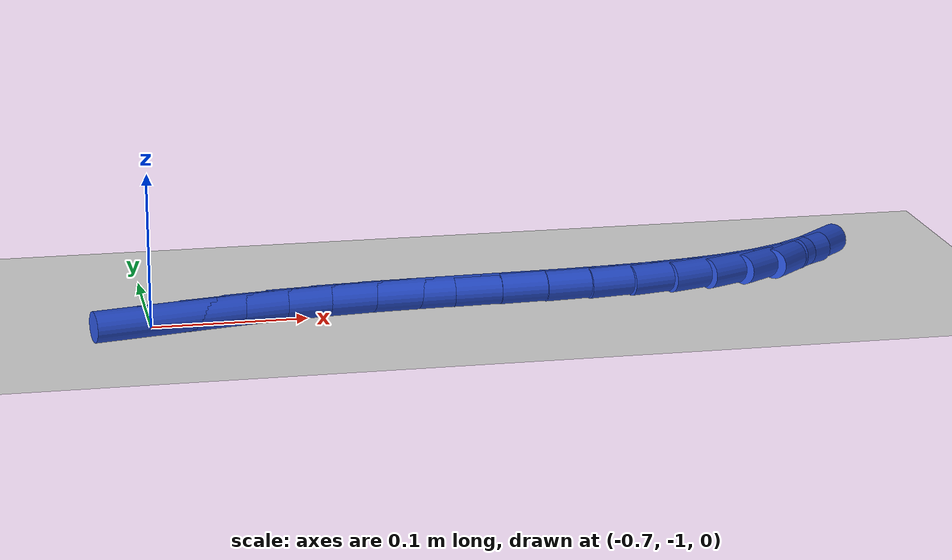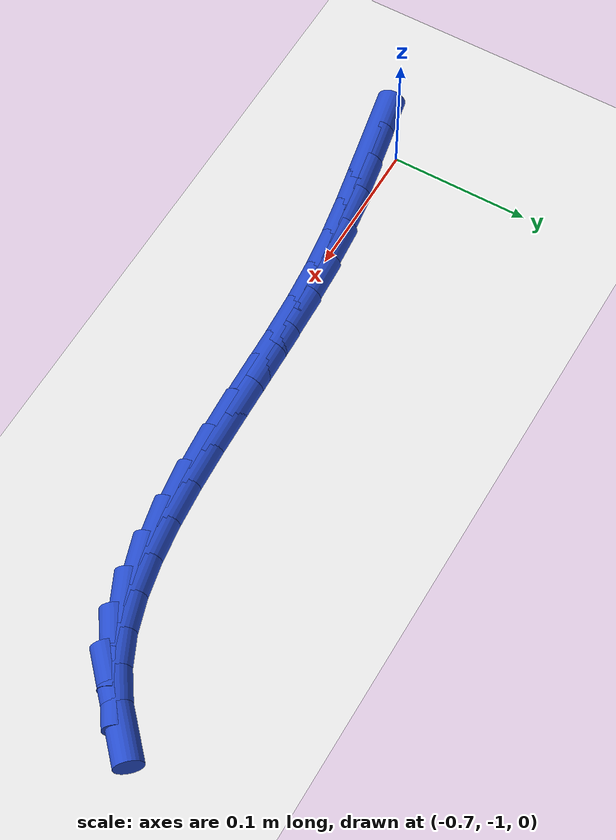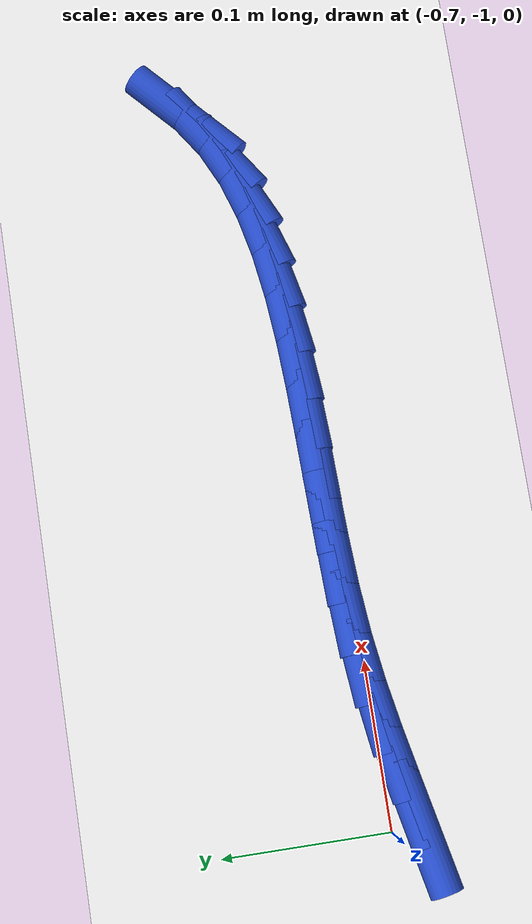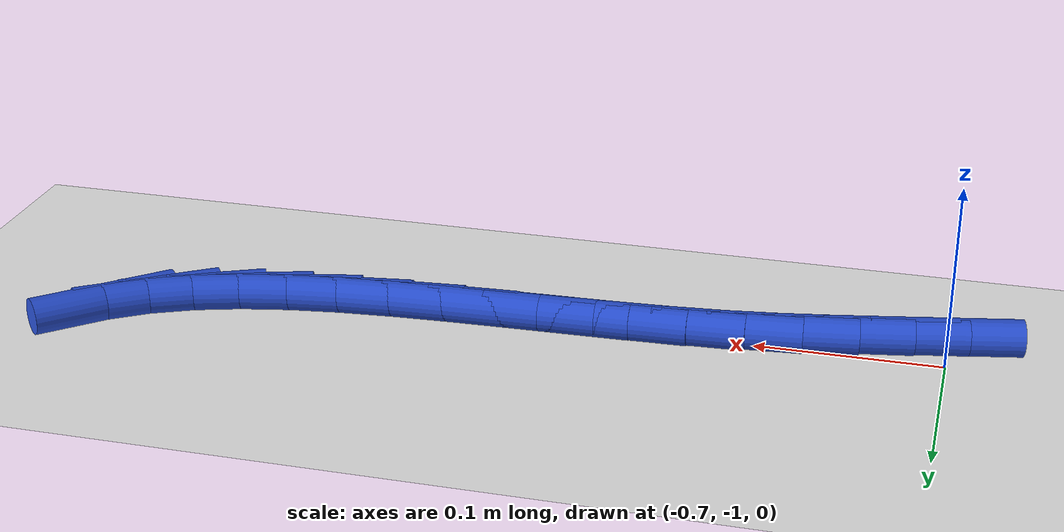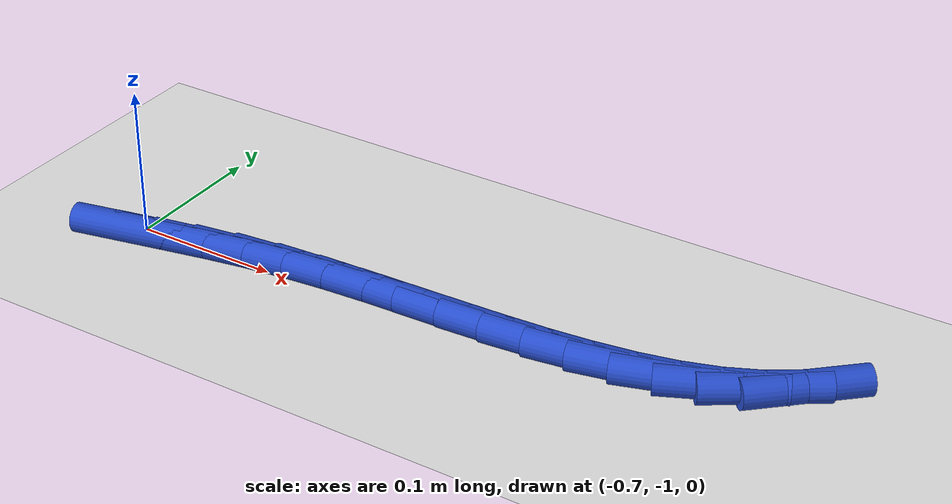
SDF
<sdf version="1.6">
 <world name="default">
  <model name="ground_plane">
   <static>1</static>
   <link name="link">
    <collision name="collision">
     <geometry><plane><normal>0 0 1</normal><size>100 100</size></plane></geometry>
     <surface><friction><ode><mu>100</mu><mu2>50</mu2></ode></friction></surface>
    </collision>
    <visual name="visual">
     <cast_shadows>0</cast_shadows>
     <geometry><plane><normal>0 0 1</normal><size>100 100</size></plane></geometry>
     <material>
      <script><uri>file://media/materials/scripts/gazebo.material</uri><name>Gazebo/WhiteGlow</name></script>
     </material>
    </visual>
   </link>
  </model>
  <model name="line">
   <link name="link_220">
    <pose>-0.6985794826883338 -1.0168291882600338 0.01 0 1.57 0.20521963874366755</pose>
    <collision name="collision">
     <geometry><cylinder><radius>0.01</radius><length>0.08</length></cylinder></geometry>
    </collision>
    <visual name="visual">
     <material>
      <script><name>Gazebo/Blue</name><uri>file://media/materials/scripts/gazebo.material</uri></script>
     </material>
     <geometry><cylinder><radius>0.01</radius><length>0.08</length></cylinder></geometry>
    </visual>
   </link>
   <link name="link_221">
    <pose>-0.6707212512381153 -1.0110304984550458 0.01 0 1.57 0.20032196868509383</pose>
    <collision name="collision">
     <geometry><cylinder><radius>0.01</radius><length>0.08</length></cylinder></geometry>
    </collision>
    <visual name="visual">
     <material>
      <script><name>Gazebo/Blue</name><uri>file://media/materials/scripts/gazebo.material</uri></script>
     </material>
     <geometry><cylinder><radius>0.01</radius><length>0.08</length></cylinder></geometry>
    </visual>
   </link>
   <link name="link_222">
    <pose>-0.6429313956902702 -1.0053879001151662 0.01 0 1.57 0.1772780225135587</pose>
    <collision name="collision">
     <geometry><cylinder><radius>0.01</radius><length>0.08</length></cylinder></geometry>
    </collision>
    <visual name="visual">
     <material>
      <script><name>Gazebo/Blue</name><uri>file://media/materials/scripts/gazebo.material</uri></script>
     </material>
     <geometry><cylinder><radius>0.01</radius><length>0.08</length></cylinder></geometry>
    </visual>
   </link>
   <link name="link_223">
    <pose>-0.6148243832981237 -1.000352281384861 0.01 0 1.57 0.13720895910237058</pose>
    <collision name="collision">
     <geometry><cylinder><radius>0.01</radius><length>0.08</length></cylinder></geometry>
    </collision>
    <visual name="visual">
     <material>
      <script><name>Gazebo/Blue</name><uri>file://media/materials/scripts/gazebo.material</uri></script>
     </material>
     <geometry><cylinder><radius>0.01</radius><length>0.08</length></cylinder></geometry>
    </visual>
   </link>
   <link name="link_224">
    <pose>-0.5860148249694973 -0.9963743572917315 0.01 0 1.57 0.0892391588888924</pose>
    <collision name="collision">
     <geometry><cylinder><radius>0.01</radius><length>0.08</length></cylinder></geometry>
    </collision>
    <visual name="visual">
     <material>
      <script><name>Gazebo/Blue</name><uri>file://media/materials/scripts/gazebo.material</uri></script>
     </material>
     <geometry><cylinder><radius>0.01</radius><length>0.08</length></cylinder></geometry>
    </visual>
   </link>
   <link name="link_225">
    <pose>-0.5562761627087253 -0.9937134368056657 0.01 0 1.57 0.0539031008665584</pose>
    <collision name="collision">
     <geometry><cylinder><radius>0.01</radius><length>0.08</length></cylinder></geometry>
    </collision>
    <visual name="visual">
     <material>
      <script><name>Gazebo/Blue</name><uri>file://media/materials/scripts/gazebo.material</uri></script>
     </material>
     <geometry><cylinder><radius>0.01</radius><length>0.08</length></cylinder></geometry>
    </visual>
   </link>
   <link name="link_226">
    <pose>-0.525844336436326 -0.9920714764335697 0.01 0 1.57 0.033161774943645785</pose>
    <collision name="collision">
     <geometry><cylinder><radius>0.01</radius><length>0.08</length></cylinder></geometry>
    </collision>
    <visual name="visual">
     <material>
      <script><name>Gazebo/Blue</name><uri>file://media/materials/scripts/gazebo.material</uri></script>
     </material>
     <geometry><cylinder><radius>0.01</radius><length>0.08</length></cylinder></geometry>
    </visual>
   </link>
   <link name="link_227">
    <pose>-0.49503900609575985 -0.9910495423661898 0.01 0 1.57 0.02594566688348286</pose>
    <collision name="collision">
     <geometry><cylinder><radius>0.01</radius><length>0.08</length></cylinder></geometry>
    </collision>
    <visual name="visual">
     <material>
      <script><name>Gazebo/Blue</name><uri>file://media/materials/scripts/gazebo.material</uri></script>
     </material>
     <geometry><cylinder><radius>0.01</radius><length>0.08</length></cylinder></geometry>
    </visual>
   </link>
   <link name="link_228">
    <pose>-0.4641798316304901 -0.9902487007942722 0.01 0 1.57 0.03197913810638247</pose>
    <collision name="collision">
     <geometry><cylinder><radius>0.01</radius><length>0.08</length></cylinder></geometry>
    </collision>
    <visual name="visual">
     <material>
      <script><name>Gazebo/Blue</name><uri>file://media/materials/scripts/gazebo.material</uri></script>
     </material>
     <geometry><cylinder><radius>0.01</radius><length>0.08</length></cylinder></geometry>
    </visual>
   </link>
   <link name="link_229">
    <pose>-0.4335864729839759 -0.9892700179085623 0.01 0 1.57 0.05178863015165799</pose>
    <collision name="collision">
     <geometry><cylinder><radius>0.01</radius><length>0.08</length></cylinder></geometry>
    </collision>
    <visual name="visual">
     <material>
      <script><name>Gazebo/Blue</name><uri>file://media/materials/scripts/gazebo.material</uri></script>
     </material>
     <geometry><cylinder><radius>0.01</radius><length>0.08</length></cylinder></geometry>
    </visual>
   </link>
   <link name="link_230">
    <pose>-0.4035785900996803 -0.9877145598998062 0.01 0 1.57 0.08675516082568713</pose>
    <collision name="collision">
     <geometry><cylinder><radius>0.01</radius><length>0.08</length></cylinder></geometry>
    </collision>
    <visual name="visual">
     <material>
      <script><name>Gazebo/Blue</name><uri>file://media/materials/scripts/gazebo.material</uri></script>
     </material>
     <geometry><cylinder><radius>0.01</radius><length>0.08</length></cylinder></geometry>
    </visual>
   </link>
   <link name="link_231">
    <pose>-0.3744758429210631 -0.9851833929587506 0.01 0 1.57 0.13919784095195747</pose>
    <collision name="collision">
     <geometry><cylinder><radius>0.01</radius><length>0.08</length></cylinder></geometry>
    </collision>
    <visual name="visual">
     <material>
      <script><name>Gazebo/Blue</name><uri>file://media/materials/scripts/gazebo.material</uri></script>
     </material>
     <geometry><cylinder><radius>0.01</radius><length>0.08</length></cylinder></geometry>
    </visual>
   </link>
   <link name="link_232">
    <pose>-0.3465978913915869 -0.9812775832761405 0.01 0 1.57 0.21241796311935918</pose>
    <collision name="collision">
     <geometry><cylinder><radius>0.01</radius><length>0.08</length></cylinder></geometry>
    </collision>
    <visual name="visual">
     <material>
      <script><name>Gazebo/Blue</name><uri>file://media/materials/scripts/gazebo.material</uri></script>
     </material>
     <geometry><cylinder><radius>0.01</radius><length>0.08</length></cylinder></geometry>
    </visual>
   </link>
   <link name="link_233">
    <pose>-0.3202643954547116 -0.9755981970427222 0.01 0 1.57 0.3105069943070445</pose>
    <collision name="collision">
     <geometry><cylinder><radius>0.01</radius><length>0.08</length></cylinder></geometry>
    </collision>
    <visual name="visual">
     <material>
      <script><name>Gazebo/Blue</name><uri>file://media/materials/scripts/gazebo.material</uri></script>
     </material>
     <geometry><cylinder><radius>0.01</radius><length>0.08</length></cylinder></geometry>
    </visual>
   </link>
   <link name="link_234">
    <pose>-0.2957950150538998 -0.9677463004492419 0.01 0 1.57 0.4374887413856873</pose>
    <collision name="collision">
     <geometry><cylinder><radius>0.01</radius><length>0.08</length></cylinder></geometry>
    </collision>
    <visual name="visual">
     <material>
      <script><name>Gazebo/Blue</name><uri>file://media/materials/scripts/gazebo.material</uri></script>
     </material>
     <geometry><cylinder><radius>0.01</radius><length>0.08</length></cylinder></geometry>
    </visual>
   </link>
   <link name="link_235">
    <pose>-0.273509410132612 -0.9573229596864452 0.01 0 1.57 0.5908946421335814</pose>
    <collision name="collision">
     <geometry><cylinder><radius>0.01</radius><length>0.08</length></cylinder></geometry>
    </collision>
    <visual name="visual">
     <material>
      <script><name>Gazebo/Blue</name><uri>file://media/materials/scripts/gazebo.material</uri></script>
     </material>
     <geometry><cylinder><radius>0.01</radius><length>0.08</length></cylinder></geometry>
    </visual>
   </link>
   <link name="link_236">
    <pose>-0.2536615099903602 -0.9440079534590889 0.01 0 1.57 0.7443011816596561</pose>
    <collision name="collision">
     <geometry><cylinder><radius>0.01</radius><length>0.08</length></cylinder></geometry>
    </collision>
    <visual name="visual">
     <material>
      <script><name>Gazebo/Blue</name><uri>file://media/materials/scripts/gazebo.material</uri></script>
     </material>
     <geometry><cylinder><radius>0.01</radius><length>0.08</length></cylinder></geometry>
    </visual>
   </link>
  </model>
 </world>
</sdf>
